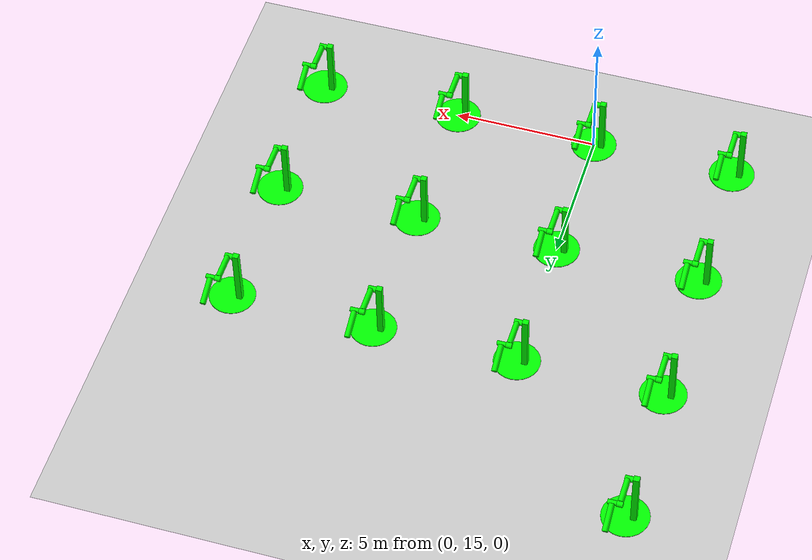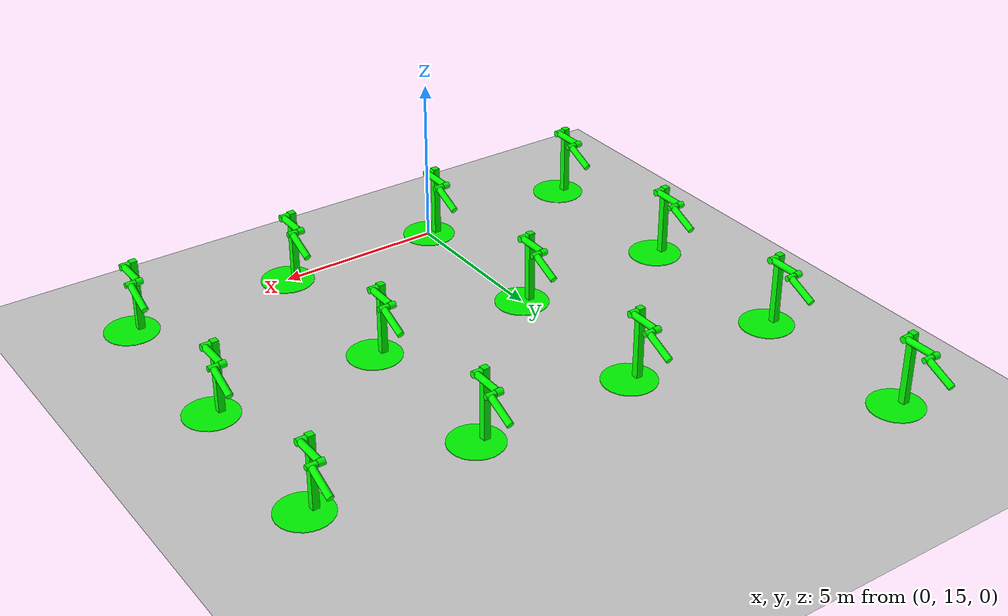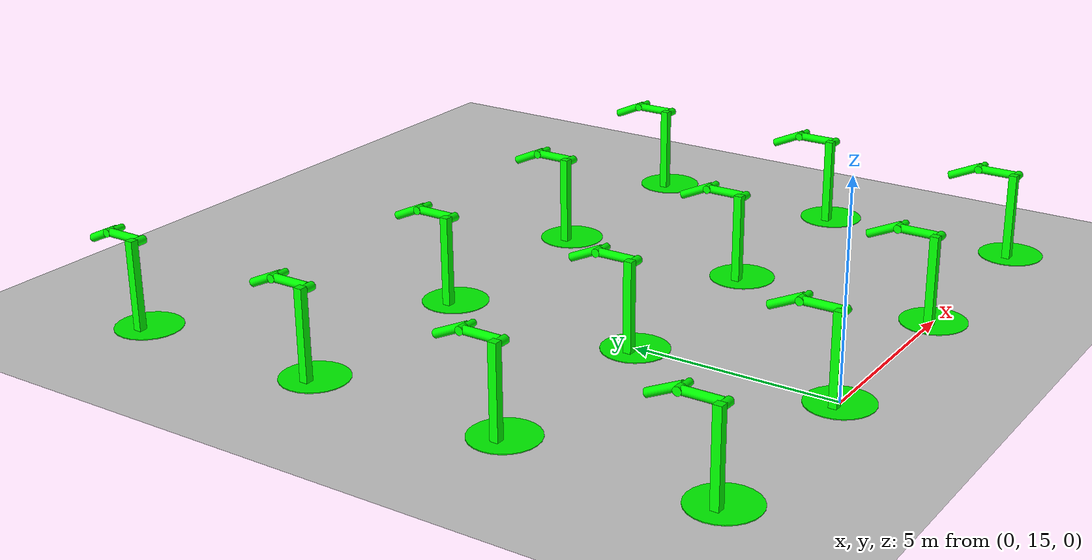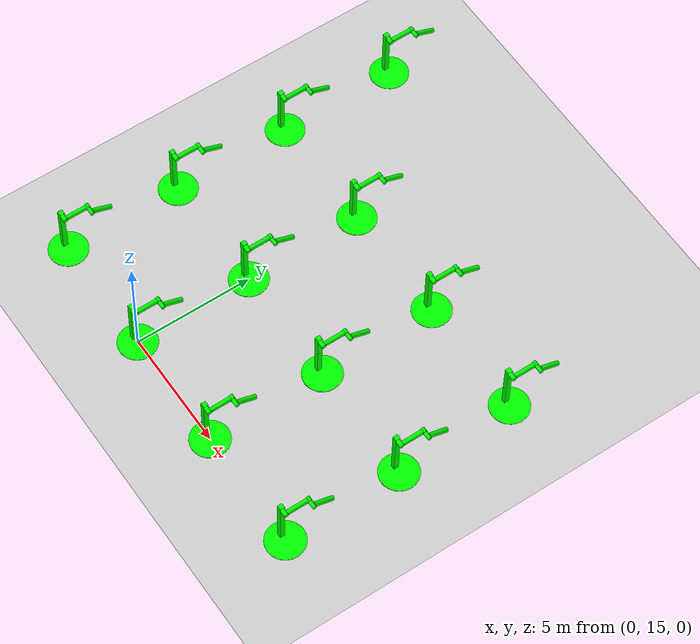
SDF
<sdf version="1.6">
 <world name="double_pendulums">
  <model name="ground_plane">
   <static>true</static>
   <link name="link">
    <collision name="collision">
     <geometry><plane><normal>0 0 1</normal><size>100 100</size></plane></geometry>
    </collision>
    <visual name="visual">
     <geometry><plane><normal>0 0 1</normal><size>100 100</size></plane></geometry>
     <material>
      <ambient>0.8 0.8 0.8 1</ambient>
      <diffuse>0.8 0.8 0.8 1</diffuse>
      <specular>0.8 0.8 0.8 1</specular>
     </material>
    </visual>
   </link>
  </model>
  <model name="dbl_pendulum_84">
   <pose>-5 15 0 0 0 0</pose>
   <link name="base">
    <inertial><mass>100</mass></inertial>
    <visual name="vis_plate_on_ground">
     <pose>0 0 0.01 0 0 0</pose>
     <geometry><cylinder><radius>0.8</radius><length>0.02</length></cylinder></geometry>
     <material><ambient>0 1 0 1</ambient><diffuse>0 1 0 1</diffuse><specular>0 1 0 1</specular></material>
    </visual>
    <visual name="vis_pole">
     <pose>-0.275 0 1.1 0 0 0</pose>
     <geometry><box><size>0.2 0.2 2.2</size></box></geometry>
     <material><ambient>0 1 0 1</ambient><diffuse>0 1 0 1</diffuse><specular>0 1 0 1</specular></material>
    </visual>
    <collision name="col_plate_on_ground">
     <pose>0 0 0.01 0 0 0</pose>
     <geometry><cylinder><radius>0.8</radius><length>0.02</length></cylinder></geometry>
    </collision>
    <collision name="col_pole">
     <pose>-0.275 0 1.1 0 0 0</pose>
     <geometry><box><size>0.2 0.2 2.2</size></box></geometry>
    </collision>
   </link>
   <link name="upper_link">
    <pose>0 0 2.1 -1.5708 0 0</pose>
    <inertial><pose>0 0 0.5 0 0 0</pose></inertial>
    <visual name="vis_upper_joint">
     <pose>-0.05 0 0 0 1.5708 0</pose>
     <geometry><cylinder><radius>0.1</radius><length>0.3</length></cylinder></geometry>
     <material><ambient>0 1 0 1</ambient><diffuse>0 1 0 1</diffuse><specular>0 1 0 1</specular></material>
    </visual>
    <visual name="vis_lower_joint">
     <pose>0 0 1.0 0 1.5708 0</pose>
     <geometry><cylinder><radius>0.1</radius><length>0.2</length></cylinder></geometry>
     <material><ambient>0 1 0 1</ambient><diffuse>0 1 0 1</diffuse><specular>0 1 0 1</specular></material>
    </visual>
    <visual name="vis_cylinder">
     <pose>0 0 0.5 0 0 0</pose>
     <geometry><cylinder><radius>0.1</radius><length>0.9</length></cylinder></geometry>
     <material><ambient>0 1 0 1</ambient><diffuse>0 1 0 1</diffuse><specular>0 1 0 1</specular></material>
    </visual>
    <collision name="col_upper_joint">
     <pose>-0.05 0 0 0 1.5708 0</pose>
     <geometry><cylinder><radius>0.1</radius><length>0.3</length></cylinder></geometry>
    </collision>
    <collision name="col_lower_joint">
     <pose>0 0 1.0 0 1.5708 0</pose>
     <geometry><cylinder><radius>0.1</radius><length>0.2</length></cylinder></geometry>
    </collision>
    <collision name="col_cylinder">
     <pose>0 0 0.5 0 0 0</pose>
     <geometry><cylinder><radius>0.1</radius><length>0.9</length></cylinder></geometry>
    </collision>
   </link>
   <link name="lower_link">
    <pose>0.25 1.0 2.1 -2 0 0</pose>
    <inertial><pose>0 0 0.5 0 0 0</pose></inertial>
    <visual name="vis_lower_joint">
     <pose>0 0 0 0 1.5708 0</pose>
     <geometry><cylinder><radius>0.08</radius><length>0.3</length></cylinder></geometry>
     <material><ambient>0 1 0 1</ambient><diffuse>0 1 0 1</diffuse><specular>0 1 0 1</specular></material>
    </visual>
    <visual name="vis_cylinder">
     <pose>0 0 0.5 0 0 0</pose>
     <geometry><cylinder><radius>0.1</radius><length>0.9</length></cylinder></geometry>
     <material><ambient>0 1 0 1</ambient><diffuse>0 1 0 1</diffuse><specular>0 1 0 1</specular></material>
    </visual>
    <collision name="col_lower_joint">
     <pose>0 0 0 0 1.5708 0</pose>
     <geometry><cylinder><radius>0.08</radius><length>0.3</length></cylinder></geometry>
    </collision>
    <collision name="col_cylinder">
     <pose>0 0 0.5 0 0 0</pose>
     <geometry><cylinder><radius>0.1</radius><length>0.9</length></cylinder></geometry>
    </collision>
   </link>
   <joint name="upper_joint" type="revolute">
    <parent>base</parent>
    <child>upper_link</child>
    <axis><xyz>1.0 0 0</xyz></axis>
   </joint>
   <joint name="lower_joint" type="revolute">
    <parent>upper_link</parent>
    <child>lower_link</child>
    <axis><xyz>1.0 0 0</xyz></axis>
   </joint>
  </model>
  <model name="dbl_pendulum_85">
   <pose>0 15 0 0 0 0</pose>
   <link name="base">
    <inertial><mass>100</mass></inertial>
    <visual name="vis_plate_on_ground">
     <pose>0 0 0.01 0 0 0</pose>
     <geometry><cylinder><radius>0.8</radius><length>0.02</length></cylinder></geometry>
     <material><ambient>0 1 0 1</ambient><diffuse>0 1 0 1</diffuse><specular>0 1 0 1</specular></material>
    </visual>
    <visual name="vis_pole">
     <pose>-0.275 0 1.1 0 0 0</pose>
     <geometry><box><size>0.2 0.2 2.2</size></box></geometry>
     <material><ambient>0 1 0 1</ambient><diffuse>0 1 0 1</diffuse><specular>0 1 0 1</specular></material>
    </visual>
    <collision name="col_plate_on_ground">
     <pose>0 0 0.01 0 0 0</pose>
     <geometry><cylinder><radius>0.8</radius><length>0.02</length></cylinder></geometry>
    </collision>
    <collision name="col_pole">
     <pose>-0.275 0 1.1 0 0 0</pose>
     <geometry><box><size>0.2 0.2 2.2</size></box></geometry>
    </collision>
   </link>
   <link name="upper_link">
    <pose>0 0 2.1 -1.5708 0 0</pose>
    <inertial><pose>0 0 0.5 0 0 0</pose></inertial>
    <visual name="vis_upper_joint">
     <pose>-0.05 0 0 0 1.5708 0</pose>
     <geometry><cylinder><radius>0.1</radius><length>0.3</length></cylinder></geometry>
     <material><ambient>0 1 0 1</ambient><diffuse>0 1 0 1</diffuse><specular>0 1 0 1</specular></material>
    </visual>
    <visual name="vis_lower_joint">
     <pose>0 0 1.0 0 1.5708 0</pose>
     <geometry><cylinder><radius>0.1</radius><length>0.2</length></cylinder></geometry>
     <material><ambient>0 1 0 1</ambient><diffuse>0 1 0 1</diffuse><specular>0 1 0 1</specular></material>
    </visual>
    <visual name="vis_cylinder">
     <pose>0 0 0.5 0 0 0</pose>
     <geometry><cylinder><radius>0.1</radius><length>0.9</length></cylinder></geometry>
     <material><ambient>0 1 0 1</ambient><diffuse>0 1 0 1</diffuse><specular>0 1 0 1</specular></material>
    </visual>
    <collision name="col_upper_joint">
     <pose>-0.05 0 0 0 1.5708 0</pose>
     <geometry><cylinder><radius>0.1</radius><length>0.3</length></cylinder></geometry>
    </collision>
    <collision name="col_lower_joint">
     <pose>0 0 1.0 0 1.5708 0</pose>
     <geometry><cylinder><radius>0.1</radius><length>0.2</length></cylinder></geometry>
    </collision>
    <collision name="col_cylinder">
     <pose>0 0 0.5 0 0 0</pose>
     <geometry><cylinder><radius>0.1</radius><length>0.9</length></cylinder></geometry>
    </collision>
   </link>
   <link name="lower_link">
    <pose>0.25 1.0 2.1 -2 0 0</pose>
    <inertial><pose>0 0 0.5 0 0 0</pose></inertial>
    <visual name="vis_lower_joint">
     <pose>0 0 0 0 1.5708 0</pose>
     <geometry><cylinder><radius>0.08</radius><length>0.3</length></cylinder></geometry>
     <material><ambient>0 1 0 1</ambient><diffuse>0 1 0 1</diffuse><specular>0 1 0 1</specular></material>
    </visual>
    <visual name="vis_cylinder">
     <pose>0 0 0.5 0 0 0</pose>
     <geometry><cylinder><radius>0.1</radius><length>0.9</length></cylinder></geometry>
     <material><ambient>0 1 0 1</ambient><diffuse>0 1 0 1</diffuse><specular>0 1 0 1</specular></material>
    </visual>
    <collision name="col_lower_joint">
     <pose>0 0 0 0 1.5708 0</pose>
     <geometry><cylinder><radius>0.08</radius><length>0.3</length></cylinder></geometry>
    </collision>
    <collision name="col_cylinder">
     <pose>0 0 0.5 0 0 0</pose>
     <geometry><cylinder><radius>0.1</radius><length>0.9</length></cylinder></geometry>
    </collision>
   </link>
   <joint name="upper_joint" type="revolute">
    <parent>base</parent>
    <child>upper_link</child>
    <axis><xyz>1.0 0 0</xyz></axis>
   </joint>
   <joint name="lower_joint" type="revolute">
    <parent>upper_link</parent>
    <child>lower_link</child>
    <axis><xyz>1.0 0 0</xyz></axis>
   </joint>
  </model>
  <model name="dbl_pendulum_86">
   <pose>5 15 0 0 0 0</pose>
   <link name="base">
    <inertial><mass>100</mass></inertial>
    <visual name="vis_plate_on_ground">
     <pose>0 0 0.01 0 0 0</pose>
     <geometry><cylinder><radius>0.8</radius><length>0.02</length></cylinder></geometry>
     <material><ambient>0 1 0 1</ambient><diffuse>0 1 0 1</diffuse><specular>0 1 0 1</specular></material>
    </visual>
    <visual name="vis_pole">
     <pose>-0.275 0 1.1 0 0 0</pose>
     <geometry><box><size>0.2 0.2 2.2</size></box></geometry>
     <material><ambient>0 1 0 1</ambient><diffuse>0 1 0 1</diffuse><specular>0 1 0 1</specular></material>
    </visual>
    <collision name="col_plate_on_ground">
     <pose>0 0 0.01 0 0 0</pose>
     <geometry><cylinder><radius>0.8</radius><length>0.02</length></cylinder></geometry>
    </collision>
    <collision name="col_pole">
     <pose>-0.275 0 1.1 0 0 0</pose>
     <geometry><box><size>0.2 0.2 2.2</size></box></geometry>
    </collision>
   </link>
   <link name="upper_link">
    <pose>0 0 2.1 -1.5708 0 0</pose>
    <inertial><pose>0 0 0.5 0 0 0</pose></inertial>
    <visual name="vis_upper_joint">
     <pose>-0.05 0 0 0 1.5708 0</pose>
     <geometry><cylinder><radius>0.1</radius><length>0.3</length></cylinder></geometry>
     <material><ambient>0 1 0 1</ambient><diffuse>0 1 0 1</diffuse><specular>0 1 0 1</specular></material>
    </visual>
    <visual name="vis_lower_joint">
     <pose>0 0 1.0 0 1.5708 0</pose>
     <geometry><cylinder><radius>0.1</radius><length>0.2</length></cylinder></geometry>
     <material><ambient>0 1 0 1</ambient><diffuse>0 1 0 1</diffuse><specular>0 1 0 1</specular></material>
    </visual>
    <visual name="vis_cylinder">
     <pose>0 0 0.5 0 0 0</pose>
     <geometry><cylinder><radius>0.1</radius><length>0.9</length></cylinder></geometry>
     <material><ambient>0 1 0 1</ambient><diffuse>0 1 0 1</diffuse><specular>0 1 0 1</specular></material>
    </visual>
    <collision name="col_upper_joint">
     <pose>-0.05 0 0 0 1.5708 0</pose>
     <geometry><cylinder><radius>0.1</radius><length>0.3</length></cylinder></geometry>
    </collision>
    <collision name="col_lower_joint">
     <pose>0 0 1.0 0 1.5708 0</pose>
     <geometry><cylinder><radius>0.1</radius><length>0.2</length></cylinder></geometry>
    </collision>
    <collision name="col_cylinder">
     <pose>0 0 0.5 0 0 0</pose>
     <geometry><cylinder><radius>0.1</radius><length>0.9</length></cylinder></geometry>
    </collision>
   </link>
   <link name="lower_link">
    <pose>0.25 1.0 2.1 -2 0 0</pose>
    <inertial><pose>0 0 0.5 0 0 0</pose></inertial>
    <visual name="vis_lower_joint">
     <pose>0 0 0 0 1.5708 0</pose>
     <geometry><cylinder><radius>0.08</radius><length>0.3</length></cylinder></geometry>
     <material><ambient>0 1 0 1</ambient><diffuse>0 1 0 1</diffuse><specular>0 1 0 1</specular></material>
    </visual>
    <visual name="vis_cylinder">
     <pose>0 0 0.5 0 0 0</pose>
     <geometry><cylinder><radius>0.1</radius><length>0.9</length></cylinder></geometry>
     <material><ambient>0 1 0 1</ambient><diffuse>0 1 0 1</diffuse><specular>0 1 0 1</specular></material>
    </visual>
    <collision name="col_lower_joint">
     <pose>0 0 0 0 1.5708 0</pose>
     <geometry><cylinder><radius>0.08</radius><length>0.3</length></cylinder></geometry>
    </collision>
    <collision name="col_cylinder">
     <pose>0 0 0.5 0 0 0</pose>
     <geometry><cylinder><radius>0.1</radius><length>0.9</length></cylinder></geometry>
    </collision>
   </link>
   <joint name="upper_joint" type="revolute">
    <parent>base</parent>
    <child>upper_link</child>
    <axis><xyz>1.0 0 0</xyz></axis>
   </joint>
   <joint name="lower_joint" type="revolute">
    <parent>upper_link</parent>
    <child>lower_link</child>
    <axis><xyz>1.0 0 0</xyz></axis>
   </joint>
  </model>
  <model name="dbl_pendulum_87">
   <pose>10 15 0 0 0 0</pose>
   <link name="base">
    <inertial><mass>100</mass></inertial>
    <visual name="vis_plate_on_ground">
     <pose>0 0 0.01 0 0 0</pose>
     <geometry><cylinder><radius>0.8</radius><length>0.02</length></cylinder></geometry>
     <material><ambient>0 1 0 1</ambient><diffuse>0 1 0 1</diffuse><specular>0 1 0 1</specular></material>
    </visual>
    <visual name="vis_pole">
     <pose>-0.275 0 1.1 0 0 0</pose>
     <geometry><box><size>0.2 0.2 2.2</size></box></geometry>
     <material><ambient>0 1 0 1</ambient><diffuse>0 1 0 1</diffuse><specular>0 1 0 1</specular></material>
    </visual>
    <collision name="col_plate_on_ground">
     <pose>0 0 0.01 0 0 0</pose>
     <geometry><cylinder><radius>0.8</radius><length>0.02</length></cylinder></geometry>
    </collision>
    <collision name="col_pole">
     <pose>-0.275 0 1.1 0 0 0</pose>
     <geometry><box><size>0.2 0.2 2.2</size></box></geometry>
    </collision>
   </link>
   <link name="upper_link">
    <pose>0 0 2.1 -1.5708 0 0</pose>
    <inertial><pose>0 0 0.5 0 0 0</pose></inertial>
    <visual name="vis_upper_joint">
     <pose>-0.05 0 0 0 1.5708 0</pose>
     <geometry><cylinder><radius>0.1</radius><length>0.3</length></cylinder></geometry>
     <material><ambient>0 1 0 1</ambient><diffuse>0 1 0 1</diffuse><specular>0 1 0 1</specular></material>
    </visual>
    <visual name="vis_lower_joint">
     <pose>0 0 1.0 0 1.5708 0</pose>
     <geometry><cylinder><radius>0.1</radius><length>0.2</length></cylinder></geometry>
     <material><ambient>0 1 0 1</ambient><diffuse>0 1 0 1</diffuse><specular>0 1 0 1</specular></material>
    </visual>
    <visual name="vis_cylinder">
     <pose>0 0 0.5 0 0 0</pose>
     <geometry><cylinder><radius>0.1</radius><length>0.9</length></cylinder></geometry>
     <material><ambient>0 1 0 1</ambient><diffuse>0 1 0 1</diffuse><specular>0 1 0 1</specular></material>
    </visual>
    <collision name="col_upper_joint">
     <pose>-0.05 0 0 0 1.5708 0</pose>
     <geometry><cylinder><radius>0.1</radius><length>0.3</length></cylinder></geometry>
    </collision>
    <collision name="col_lower_joint">
     <pose>0 0 1.0 0 1.5708 0</pose>
     <geometry><cylinder><radius>0.1</radius><length>0.2</length></cylinder></geometry>
    </collision>
    <collision name="col_cylinder">
     <pose>0 0 0.5 0 0 0</pose>
     <geometry><cylinder><radius>0.1</radius><length>0.9</length></cylinder></geometry>
    </collision>
   </link>
   <link name="lower_link">
    <pose>0.25 1.0 2.1 -2 0 0</pose>
    <inertial><pose>0 0 0.5 0 0 0</pose></inertial>
    <visual name="vis_lower_joint">
     <pose>0 0 0 0 1.5708 0</pose>
     <geometry><cylinder><radius>0.08</radius><length>0.3</length></cylinder></geometry>
     <material><ambient>0 1 0 1</ambient><diffuse>0 1 0 1</diffuse><specular>0 1 0 1</specular></material>
    </visual>
    <visual name="vis_cylinder">
     <pose>0 0 0.5 0 0 0</pose>
     <geometry><cylinder><radius>0.1</radius><length>0.9</length></cylinder></geometry>
     <material><ambient>0 1 0 1</ambient><diffuse>0 1 0 1</diffuse><specular>0 1 0 1</specular></material>
    </visual>
    <collision name="col_lower_joint">
     <pose>0 0 0 0 1.5708 0</pose>
     <geometry><cylinder><radius>0.08</radius><length>0.3</length></cylinder></geometry>
    </collision>
    <collision name="col_cylinder">
     <pose>0 0 0.5 0 0 0</pose>
     <geometry><cylinder><radius>0.1</radius><length>0.9</length></cylinder></geometry>
    </collision>
   </link>
   <joint name="upper_joint" type="revolute">
    <parent>base</parent>
    <child>upper_link</child>
    <axis><xyz>1.0 0 0</xyz></axis>
   </joint>
   <joint name="lower_joint" type="revolute">
    <parent>upper_link</parent>
    <child>lower_link</child>
    <axis><xyz>1.0 0 0</xyz></axis>
   </joint>
  </model>
  <model name="dbl_pendulum_109">
   <pose>-5 20 0 0 0 0</pose>
   <link name="base">
    <inertial><mass>100</mass></inertial>
    <visual name="vis_plate_on_ground">
     <pose>0 0 0.01 0 0 0</pose>
     <geometry><cylinder><radius>0.8</radius><length>0.02</length></cylinder></geometry>
     <material><ambient>0 1 0 1</ambient><diffuse>0 1 0 1</diffuse><specular>0 1 0 1</specular></material>
    </visual>
    <visual name="vis_pole">
     <pose>-0.275 0 1.1 0 0 0</pose>
     <geometry><box><size>0.2 0.2 2.2</size></box></geometry>
     <material><ambient>0 1 0 1</ambient><diffuse>0 1 0 1</diffuse><specular>0 1 0 1</specular></material>
    </visual>
    <collision name="col_plate_on_ground">
     <pose>0 0 0.01 0 0 0</pose>
     <geometry><cylinder><radius>0.8</radius><length>0.02</length></cylinder></geometry>
    </collision>
    <collision name="col_pole">
     <pose>-0.275 0 1.1 0 0 0</pose>
     <geometry><box><size>0.2 0.2 2.2</size></box></geometry>
    </collision>
   </link>
   <link name="upper_link">
    <pose>0 0 2.1 -1.5708 0 0</pose>
    <inertial><pose>0 0 0.5 0 0 0</pose></inertial>
    <visual name="vis_upper_joint">
     <pose>-0.05 0 0 0 1.5708 0</pose>
     <geometry><cylinder><radius>0.1</radius><length>0.3</length></cylinder></geometry>
     <material><ambient>0 1 0 1</ambient><diffuse>0 1 0 1</diffuse><specular>0 1 0 1</specular></material>
    </visual>
    <visual name="vis_lower_joint">
     <pose>0 0 1.0 0 1.5708 0</pose>
     <geometry><cylinder><radius>0.1</radius><length>0.2</length></cylinder></geometry>
     <material><ambient>0 1 0 1</ambient><diffuse>0 1 0 1</diffuse><specular>0 1 0 1</specular></material>
    </visual>
    <visual name="vis_cylinder">
     <pose>0 0 0.5 0 0 0</pose>
     <geometry><cylinder><radius>0.1</radius><length>0.9</length></cylinder></geometry>
     <material><ambient>0 1 0 1</ambient><diffuse>0 1 0 1</diffuse><specular>0 1 0 1</specular></material>
    </visual>
    <collision name="col_upper_joint">
     <pose>-0.05 0 0 0 1.5708 0</pose>
     <geometry><cylinder><radius>0.1</radius><length>0.3</length></cylinder></geometry>
    </collision>
    <collision name="col_lower_joint">
     <pose>0 0 1.0 0 1.5708 0</pose>
     <geometry><cylinder><radius>0.1</radius><length>0.2</length></cylinder></geometry>
    </collision>
    <collision name="col_cylinder">
     <pose>0 0 0.5 0 0 0</pose>
     <geometry><cylinder><radius>0.1</radius><length>0.9</length></cylinder></geometry>
    </collision>
   </link>
   <link name="lower_link">
    <pose>0.25 1.0 2.1 -2 0 0</pose>
    <inertial><pose>0 0 0.5 0 0 0</pose></inertial>
    <visual name="vis_lower_joint">
     <pose>0 0 0 0 1.5708 0</pose>
     <geometry><cylinder><radius>0.08</radius><length>0.3</length></cylinder></geometry>
     <material><ambient>0 1 0 1</ambient><diffuse>0 1 0 1</diffuse><specular>0 1 0 1</specular></material>
    </visual>
    <visual name="vis_cylinder">
     <pose>0 0 0.5 0 0 0</pose>
     <geometry><cylinder><radius>0.1</radius><length>0.9</length></cylinder></geometry>
     <material><ambient>0 1 0 1</ambient><diffuse>0 1 0 1</diffuse><specular>0 1 0 1</specular></material>
    </visual>
    <collision name="col_lower_joint">
     <pose>0 0 0 0 1.5708 0</pose>
     <geometry><cylinder><radius>0.08</radius><length>0.3</length></cylinder></geometry>
    </collision>
    <collision name="col_cylinder">
     <pose>0 0 0.5 0 0 0</pose>
     <geometry><cylinder><radius>0.1</radius><length>0.9</length></cylinder></geometry>
    </collision>
   </link>
   <joint name="upper_joint" type="revolute">
    <parent>base</parent>
    <child>upper_link</child>
    <axis><xyz>1.0 0 0</xyz></axis>
   </joint>
   <joint name="lower_joint" type="revolute">
    <parent>upper_link</parent>
    <child>lower_link</child>
    <axis><xyz>1.0 0 0</xyz></axis>
   </joint>
  </model>
  <model name="dbl_pendulum_110">
   <pose>0 20 0 0 0 0</pose>
   <link name="base">
    <inertial><mass>100</mass></inertial>
    <visual name="vis_plate_on_ground">
     <pose>0 0 0.01 0 0 0</pose>
     <geometry><cylinder><radius>0.8</radius><length>0.02</length></cylinder></geometry>
     <material><ambient>0 1 0 1</ambient><diffuse>0 1 0 1</diffuse><specular>0 1 0 1</specular></material>
    </visual>
    <visual name="vis_pole">
     <pose>-0.275 0 1.1 0 0 0</pose>
     <geometry><box><size>0.2 0.2 2.2</size></box></geometry>
     <material><ambient>0 1 0 1</ambient><diffuse>0 1 0 1</diffuse><specular>0 1 0 1</specular></material>
    </visual>
    <collision name="col_plate_on_ground">
     <pose>0 0 0.01 0 0 0</pose>
     <geometry><cylinder><radius>0.8</radius><length>0.02</length></cylinder></geometry>
    </collision>
    <collision name="col_pole">
     <pose>-0.275 0 1.1 0 0 0</pose>
     <geometry><box><size>0.2 0.2 2.2</size></box></geometry>
    </collision>
   </link>
   <link name="upper_link">
    <pose>0 0 2.1 -1.5708 0 0</pose>
    <inertial><pose>0 0 0.5 0 0 0</pose></inertial>
    <visual name="vis_upper_joint">
     <pose>-0.05 0 0 0 1.5708 0</pose>
     <geometry><cylinder><radius>0.1</radius><length>0.3</length></cylinder></geometry>
     <material><ambient>0 1 0 1</ambient><diffuse>0 1 0 1</diffuse><specular>0 1 0 1</specular></material>
    </visual>
    <visual name="vis_lower_joint">
     <pose>0 0 1.0 0 1.5708 0</pose>
     <geometry><cylinder><radius>0.1</radius><length>0.2</length></cylinder></geometry>
     <material><ambient>0 1 0 1</ambient><diffuse>0 1 0 1</diffuse><specular>0 1 0 1</specular></material>
    </visual>
    <visual name="vis_cylinder">
     <pose>0 0 0.5 0 0 0</pose>
     <geometry><cylinder><radius>0.1</radius><length>0.9</length></cylinder></geometry>
     <material><ambient>0 1 0 1</ambient><diffuse>0 1 0 1</diffuse><specular>0 1 0 1</specular></material>
    </visual>
    <collision name="col_upper_joint">
     <pose>-0.05 0 0 0 1.5708 0</pose>
     <geometry><cylinder><radius>0.1</radius><length>0.3</length></cylinder></geometry>
    </collision>
    <collision name="col_lower_joint">
     <pose>0 0 1.0 0 1.5708 0</pose>
     <geometry><cylinder><radius>0.1</radius><length>0.2</length></cylinder></geometry>
    </collision>
    <collision name="col_cylinder">
     <pose>0 0 0.5 0 0 0</pose>
     <geometry><cylinder><radius>0.1</radius><length>0.9</length></cylinder></geometry>
    </collision>
   </link>
   <link name="lower_link">
    <pose>0.25 1.0 2.1 -2 0 0</pose>
    <inertial><pose>0 0 0.5 0 0 0</pose></inertial>
    <visual name="vis_lower_joint">
     <pose>0 0 0 0 1.5708 0</pose>
     <geometry><cylinder><radius>0.08</radius><length>0.3</length></cylinder></geometry>
     <material><ambient>0 1 0 1</ambient><diffuse>0 1 0 1</diffuse><specular>0 1 0 1</specular></material>
    </visual>
    <visual name="vis_cylinder">
     <pose>0 0 0.5 0 0 0</pose>
     <geometry><cylinder><radius>0.1</radius><length>0.9</length></cylinder></geometry>
     <material><ambient>0 1 0 1</ambient><diffuse>0 1 0 1</diffuse><specular>0 1 0 1</specular></material>
    </visual>
    <collision name="col_lower_joint">
     <pose>0 0 0 0 1.5708 0</pose>
     <geometry><cylinder><radius>0.08</radius><length>0.3</length></cylinder></geometry>
    </collision>
    <collision name="col_cylinder">
     <pose>0 0 0.5 0 0 0</pose>
     <geometry><cylinder><radius>0.1</radius><length>0.9</length></cylinder></geometry>
    </collision>
   </link>
   <joint name="upper_joint" type="revolute">
    <parent>base</parent>
    <child>upper_link</child>
    <axis><xyz>1.0 0 0</xyz></axis>
   </joint>
   <joint name="lower_joint" type="revolute">
    <parent>upper_link</parent>
    <child>lower_link</child>
    <axis><xyz>1.0 0 0</xyz></axis>
   </joint>
  </model>
  <model name="dbl_pendulum_111">
   <pose>5 20 0 0 0 0</pose>
   <link name="base">
    <inertial><mass>100</mass></inertial>
    <visual name="vis_plate_on_ground">
     <pose>0 0 0.01 0 0 0</pose>
     <geometry><cylinder><radius>0.8</radius><length>0.02</length></cylinder></geometry>
     <material><ambient>0 1 0 1</ambient><diffuse>0 1 0 1</diffuse><specular>0 1 0 1</specular></material>
    </visual>
    <visual name="vis_pole">
     <pose>-0.275 0 1.1 0 0 0</pose>
     <geometry><box><size>0.2 0.2 2.2</size></box></geometry>
     <material><ambient>0 1 0 1</ambient><diffuse>0 1 0 1</diffuse><specular>0 1 0 1</specular></material>
    </visual>
    <collision name="col_plate_on_ground">
     <pose>0 0 0.01 0 0 0</pose>
     <geometry><cylinder><radius>0.8</radius><length>0.02</length></cylinder></geometry>
    </collision>
    <collision name="col_pole">
     <pose>-0.275 0 1.1 0 0 0</pose>
     <geometry><box><size>0.2 0.2 2.2</size></box></geometry>
    </collision>
   </link>
   <link name="upper_link">
    <pose>0 0 2.1 -1.5708 0 0</pose>
    <inertial><pose>0 0 0.5 0 0 0</pose></inertial>
    <visual name="vis_upper_joint">
     <pose>-0.05 0 0 0 1.5708 0</pose>
     <geometry><cylinder><radius>0.1</radius><length>0.3</length></cylinder></geometry>
     <material><ambient>0 1 0 1</ambient><diffuse>0 1 0 1</diffuse><specular>0 1 0 1</specular></material>
    </visual>
    <visual name="vis_lower_joint">
     <pose>0 0 1.0 0 1.5708 0</pose>
     <geometry><cylinder><radius>0.1</radius><length>0.2</length></cylinder></geometry>
     <material><ambient>0 1 0 1</ambient><diffuse>0 1 0 1</diffuse><specular>0 1 0 1</specular></material>
    </visual>
    <visual name="vis_cylinder">
     <pose>0 0 0.5 0 0 0</pose>
     <geometry><cylinder><radius>0.1</radius><length>0.9</length></cylinder></geometry>
     <material><ambient>0 1 0 1</ambient><diffuse>0 1 0 1</diffuse><specular>0 1 0 1</specular></material>
    </visual>
    <collision name="col_upper_joint">
     <pose>-0.05 0 0 0 1.5708 0</pose>
     <geometry><cylinder><radius>0.1</radius><length>0.3</length></cylinder></geometry>
    </collision>
    <collision name="col_lower_joint">
     <pose>0 0 1.0 0 1.5708 0</pose>
     <geometry><cylinder><radius>0.1</radius><length>0.2</length></cylinder></geometry>
    </collision>
    <collision name="col_cylinder">
     <pose>0 0 0.5 0 0 0</pose>
     <geometry><cylinder><radius>0.1</radius><length>0.9</length></cylinder></geometry>
    </collision>
   </link>
   <link name="lower_link">
    <pose>0.25 1.0 2.1 -2 0 0</pose>
    <inertial><pose>0 0 0.5 0 0 0</pose></inertial>
    <visual name="vis_lower_joint">
     <pose>0 0 0 0 1.5708 0</pose>
     <geometry><cylinder><radius>0.08</radius><length>0.3</length></cylinder></geometry>
     <material><ambient>0 1 0 1</ambient><diffuse>0 1 0 1</diffuse><specular>0 1 0 1</specular></material>
    </visual>
    <visual name="vis_cylinder">
     <pose>0 0 0.5 0 0 0</pose>
     <geometry><cylinder><radius>0.1</radius><length>0.9</length></cylinder></geometry>
     <material><ambient>0 1 0 1</ambient><diffuse>0 1 0 1</diffuse><specular>0 1 0 1</specular></material>
    </visual>
    <collision name="col_lower_joint">
     <pose>0 0 0 0 1.5708 0</pose>
     <geometry><cylinder><radius>0.08</radius><length>0.3</length></cylinder></geometry>
    </collision>
    <collision name="col_cylinder">
     <pose>0 0 0.5 0 0 0</pose>
     <geometry><cylinder><radius>0.1</radius><length>0.9</length></cylinder></geometry>
    </collision>
   </link>
   <joint name="upper_joint" type="revolute">
    <parent>base</parent>
    <child>upper_link</child>
    <axis><xyz>1.0 0 0</xyz></axis>
   </joint>
   <joint name="lower_joint" type="revolute">
    <parent>upper_link</parent>
    <child>lower_link</child>
    <axis><xyz>1.0 0 0</xyz></axis>
   </joint>
  </model>
  <model name="dbl_pendulum_112">
   <pose>10 20 0 0 0 0</pose>
   <link name="base">
    <inertial><mass>100</mass></inertial>
    <visual name="vis_plate_on_ground">
     <pose>0 0 0.01 0 0 0</pose>
     <geometry><cylinder><radius>0.8</radius><length>0.02</length></cylinder></geometry>
     <material><ambient>0 1 0 1</ambient><diffuse>0 1 0 1</diffuse><specular>0 1 0 1</specular></material>
    </visual>
    <visual name="vis_pole">
     <pose>-0.275 0 1.1 0 0 0</pose>
     <geometry><box><size>0.2 0.2 2.2</size></box></geometry>
     <material><ambient>0 1 0 1</ambient><diffuse>0 1 0 1</diffuse><specular>0 1 0 1</specular></material>
    </visual>
    <collision name="col_plate_on_ground">
     <pose>0 0 0.01 0 0 0</pose>
     <geometry><cylinder><radius>0.8</radius><length>0.02</length></cylinder></geometry>
    </collision>
    <collision name="col_pole">
     <pose>-0.275 0 1.1 0 0 0</pose>
     <geometry><box><size>0.2 0.2 2.2</size></box></geometry>
    </collision>
   </link>
   <link name="upper_link">
    <pose>0 0 2.1 -1.5708 0 0</pose>
    <inertial><pose>0 0 0.5 0 0 0</pose></inertial>
    <visual name="vis_upper_joint">
     <pose>-0.05 0 0 0 1.5708 0</pose>
     <geometry><cylinder><radius>0.1</radius><length>0.3</length></cylinder></geometry>
     <material><ambient>0 1 0 1</ambient><diffuse>0 1 0 1</diffuse><specular>0 1 0 1</specular></material>
    </visual>
    <visual name="vis_lower_joint">
     <pose>0 0 1.0 0 1.5708 0</pose>
     <geometry><cylinder><radius>0.1</radius><length>0.2</length></cylinder></geometry>
     <material><ambient>0 1 0 1</ambient><diffuse>0 1 0 1</diffuse><specular>0 1 0 1</specular></material>
    </visual>
    <visual name="vis_cylinder">
     <pose>0 0 0.5 0 0 0</pose>
     <geometry><cylinder><radius>0.1</radius><length>0.9</length></cylinder></geometry>
     <material><ambient>0 1 0 1</ambient><diffuse>0 1 0 1</diffuse><specular>0 1 0 1</specular></material>
    </visual>
    <collision name="col_upper_joint">
     <pose>-0.05 0 0 0 1.5708 0</pose>
     <geometry><cylinder><radius>0.1</radius><length>0.3</length></cylinder></geometry>
    </collision>
    <collision name="col_lower_joint">
     <pose>0 0 1.0 0 1.5708 0</pose>
     <geometry><cylinder><radius>0.1</radius><length>0.2</length></cylinder></geometry>
    </collision>
    <collision name="col_cylinder">
     <pose>0 0 0.5 0 0 0</pose>
     <geometry><cylinder><radius>0.1</radius><length>0.9</length></cylinder></geometry>
    </collision>
   </link>
   <link name="lower_link">
    <pose>0.25 1.0 2.1 -2 0 0</pose>
    <inertial><pose>0 0 0.5 0 0 0</pose></inertial>
    <visual name="vis_lower_joint">
     <pose>0 0 0 0 1.5708 0</pose>
     <geometry><cylinder><radius>0.08</radius><length>0.3</length></cylinder></geometry>
     <material><ambient>0 1 0 1</ambient><diffuse>0 1 0 1</diffuse><specular>0 1 0 1</specular></material>
    </visual>
    <visual name="vis_cylinder">
     <pose>0 0 0.5 0 0 0</pose>
     <geometry><cylinder><radius>0.1</radius><length>0.9</length></cylinder></geometry>
     <material><ambient>0 1 0 1</ambient><diffuse>0 1 0 1</diffuse><specular>0 1 0 1</specular></material>
    </visual>
    <collision name="col_lower_joint">
     <pose>0 0 0 0 1.5708 0</pose>
     <geometry><cylinder><radius>0.08</radius><length>0.3</length></cylinder></geometry>
    </collision>
    <collision name="col_cylinder">
     <pose>0 0 0.5 0 0 0</pose>
     <geometry><cylinder><radius>0.1</radius><length>0.9</length></cylinder></geometry>
    </collision>
   </link>
   <joint name="upper_joint" type="revolute">
    <parent>base</parent>
    <child>upper_link</child>
    <axis><xyz>1.0 0 0</xyz></axis>
   </joint>
   <joint name="lower_joint" type="revolute">
    <parent>upper_link</parent>
    <child>lower_link</child>
    <axis><xyz>1.0 0 0</xyz></axis>
   </joint>
  </model>
  <model name="dbl_pendulum_134">
   <pose>-5 25 0 0 0 0</pose>
   <link name="base">
    <inertial><mass>100</mass></inertial>
    <visual name="vis_plate_on_ground">
     <pose>0 0 0.01 0 0 0</pose>
     <geometry><cylinder><radius>0.8</radius><length>0.02</length></cylinder></geometry>
     <material><ambient>0 1 0 1</ambient><diffuse>0 1 0 1</diffuse><specular>0 1 0 1</specular></material>
    </visual>
    <visual name="vis_pole">
     <pose>-0.275 0 1.1 0 0 0</pose>
     <geometry><box><size>0.2 0.2 2.2</size></box></geometry>
     <material><ambient>0 1 0 1</ambient><diffuse>0 1 0 1</diffuse><specular>0 1 0 1</specular></material>
    </visual>
    <collision name="col_plate_on_ground">
     <pose>0 0 0.01 0 0 0</pose>
     <geometry><cylinder><radius>0.8</radius><length>0.02</length></cylinder></geometry>
    </collision>
    <collision name="col_pole">
     <pose>-0.275 0 1.1 0 0 0</pose>
     <geometry><box><size>0.2 0.2 2.2</size></box></geometry>
    </collision>
   </link>
   <link name="upper_link">
    <pose>0 0 2.1 -1.5708 0 0</pose>
    <inertial><pose>0 0 0.5 0 0 0</pose></inertial>
    <visual name="vis_upper_joint">
     <pose>-0.05 0 0 0 1.5708 0</pose>
     <geometry><cylinder><radius>0.1</radius><length>0.3</length></cylinder></geometry>
     <material><ambient>0 1 0 1</ambient><diffuse>0 1 0 1</diffuse><specular>0 1 0 1</specular></material>
    </visual>
    <visual name="vis_lower_joint">
     <pose>0 0 1.0 0 1.5708 0</pose>
     <geometry><cylinder><radius>0.1</radius><length>0.2</length></cylinder></geometry>
     <material><ambient>0 1 0 1</ambient><diffuse>0 1 0 1</diffuse><specular>0 1 0 1</specular></material>
    </visual>
    <visual name="vis_cylinder">
     <pose>0 0 0.5 0 0 0</pose>
     <geometry><cylinder><radius>0.1</radius><length>0.9</length></cylinder></geometry>
     <material><ambient>0 1 0 1</ambient><diffuse>0 1 0 1</diffuse><specular>0 1 0 1</specular></material>
    </visual>
    <collision name="col_upper_joint">
     <pose>-0.05 0 0 0 1.5708 0</pose>
     <geometry><cylinder><radius>0.1</radius><length>0.3</length></cylinder></geometry>
    </collision>
    <collision name="col_lower_joint">
     <pose>0 0 1.0 0 1.5708 0</pose>
     <geometry><cylinder><radius>0.1</radius><length>0.2</length></cylinder></geometry>
    </collision>
    <collision name="col_cylinder">
     <pose>0 0 0.5 0 0 0</pose>
     <geometry><cylinder><radius>0.1</radius><length>0.9</length></cylinder></geometry>
    </collision>
   </link>
   <link name="lower_link">
    <pose>0.25 1.0 2.1 -2 0 0</pose>
    <inertial><pose>0 0 0.5 0 0 0</pose></inertial>
    <visual name="vis_lower_joint">
     <pose>0 0 0 0 1.5708 0</pose>
     <geometry><cylinder><radius>0.08</radius><length>0.3</length></cylinder></geometry>
     <material><ambient>0 1 0 1</ambient><diffuse>0 1 0 1</diffuse><specular>0 1 0 1</specular></material>
    </visual>
    <visual name="vis_cylinder">
     <pose>0 0 0.5 0 0 0</pose>
     <geometry><cylinder><radius>0.1</radius><length>0.9</length></cylinder></geometry>
     <material><ambient>0 1 0 1</ambient><diffuse>0 1 0 1</diffuse><specular>0 1 0 1</specular></material>
    </visual>
    <collision name="col_lower_joint">
     <pose>0 0 0 0 1.5708 0</pose>
     <geometry><cylinder><radius>0.08</radius><length>0.3</length></cylinder></geometry>
    </collision>
    <collision name="col_cylinder">
     <pose>0 0 0.5 0 0 0</pose>
     <geometry><cylinder><radius>0.1</radius><length>0.9</length></cylinder></geometry>
    </collision>
   </link>
   <joint name="upper_joint" type="revolute">
    <parent>base</parent>
    <child>upper_link</child>
    <axis><xyz>1.0 0 0</xyz></axis>
   </joint>
   <joint name="lower_joint" type="revolute">
    <parent>upper_link</parent>
    <child>lower_link</child>
    <axis><xyz>1.0 0 0</xyz></axis>
   </joint>
  </model>
  <model name="dbl_pendulum_135">
   <pose>0 25 0 0 0 0</pose>
   <link name="base">
    <inertial><mass>100</mass></inertial>
    <visual name="vis_plate_on_ground">
     <pose>0 0 0.01 0 0 0</pose>
     <geometry><cylinder><radius>0.8</radius><length>0.02</length></cylinder></geometry>
     <material><ambient>0 1 0 1</ambient><diffuse>0 1 0 1</diffuse><specular>0 1 0 1</specular></material>
    </visual>
    <visual name="vis_pole">
     <pose>-0.275 0 1.1 0 0 0</pose>
     <geometry><box><size>0.2 0.2 2.2</size></box></geometry>
     <material><ambient>0 1 0 1</ambient><diffuse>0 1 0 1</diffuse><specular>0 1 0 1</specular></material>
    </visual>
    <collision name="col_plate_on_ground">
     <pose>0 0 0.01 0 0 0</pose>
     <geometry><cylinder><radius>0.8</radius><length>0.02</length></cylinder></geometry>
    </collision>
    <collision name="col_pole">
     <pose>-0.275 0 1.1 0 0 0</pose>
     <geometry><box><size>0.2 0.2 2.2</size></box></geometry>
    </collision>
   </link>
   <link name="upper_link">
    <pose>0 0 2.1 -1.5708 0 0</pose>
    <inertial><pose>0 0 0.5 0 0 0</pose></inertial>
    <visual name="vis_upper_joint">
     <pose>-0.05 0 0 0 1.5708 0</pose>
     <geometry><cylinder><radius>0.1</radius><length>0.3</length></cylinder></geometry>
     <material><ambient>0 1 0 1</ambient><diffuse>0 1 0 1</diffuse><specular>0 1 0 1</specular></material>
    </visual>
    <visual name="vis_lower_joint">
     <pose>0 0 1.0 0 1.5708 0</pose>
     <geometry><cylinder><radius>0.1</radius><length>0.2</length></cylinder></geometry>
     <material><ambient>0 1 0 1</ambient><diffuse>0 1 0 1</diffuse><specular>0 1 0 1</specular></material>
    </visual>
    <visual name="vis_cylinder">
     <pose>0 0 0.5 0 0 0</pose>
     <geometry><cylinder><radius>0.1</radius><length>0.9</length></cylinder></geometry>
     <material><ambient>0 1 0 1</ambient><diffuse>0 1 0 1</diffuse><specular>0 1 0 1</specular></material>
    </visual>
    <collision name="col_upper_joint">
     <pose>-0.05 0 0 0 1.5708 0</pose>
     <geometry><cylinder><radius>0.1</radius><length>0.3</length></cylinder></geometry>
    </collision>
    <collision name="col_lower_joint">
     <pose>0 0 1.0 0 1.5708 0</pose>
     <geometry><cylinder><radius>0.1</radius><length>0.2</length></cylinder></geometry>
    </collision>
    <collision name="col_cylinder">
     <pose>0 0 0.5 0 0 0</pose>
     <geometry><cylinder><radius>0.1</radius><length>0.9</length></cylinder></geometry>
    </collision>
   </link>
   <link name="lower_link">
    <pose>0.25 1.0 2.1 -2 0 0</pose>
    <inertial><pose>0 0 0.5 0 0 0</pose></inertial>
    <visual name="vis_lower_joint">
     <pose>0 0 0 0 1.5708 0</pose>
     <geometry><cylinder><radius>0.08</radius><length>0.3</length></cylinder></geometry>
     <material><ambient>0 1 0 1</ambient><diffuse>0 1 0 1</diffuse><specular>0 1 0 1</specular></material>
    </visual>
    <visual name="vis_cylinder">
     <pose>0 0 0.5 0 0 0</pose>
     <geometry><cylinder><radius>0.1</radius><length>0.9</length></cylinder></geometry>
     <material><ambient>0 1 0 1</ambient><diffuse>0 1 0 1</diffuse><specular>0 1 0 1</specular></material>
    </visual>
    <collision name="col_lower_joint">
     <pose>0 0 0 0 1.5708 0</pose>
     <geometry><cylinder><radius>0.08</radius><length>0.3</length></cylinder></geometry>
    </collision>
    <collision name="col_cylinder">
     <pose>0 0 0.5 0 0 0</pose>
     <geometry><cylinder><radius>0.1</radius><length>0.9</length></cylinder></geometry>
    </collision>
   </link>
   <joint name="upper_joint" type="revolute">
    <parent>base</parent>
    <child>upper_link</child>
    <axis><xyz>1.0 0 0</xyz></axis>
   </joint>
   <joint name="lower_joint" type="revolute">
    <parent>upper_link</parent>
    <child>lower_link</child>
    <axis><xyz>1.0 0 0</xyz></axis>
   </joint>
  </model>
  <model name="dbl_pendulum_136">
   <pose>5 25 0 0 0 0</pose>
   <link name="base">
    <inertial><mass>100</mass></inertial>
    <visual name="vis_plate_on_ground">
     <pose>0 0 0.01 0 0 0</pose>
     <geometry><cylinder><radius>0.8</radius><length>0.02</length></cylinder></geometry>
     <material><ambient>0 1 0 1</ambient><diffuse>0 1 0 1</diffuse><specular>0 1 0 1</specular></material>
    </visual>
    <visual name="vis_pole">
     <pose>-0.275 0 1.1 0 0 0</pose>
     <geometry><box><size>0.2 0.2 2.2</size></box></geometry>
     <material><ambient>0 1 0 1</ambient><diffuse>0 1 0 1</diffuse><specular>0 1 0 1</specular></material>
    </visual>
    <collision name="col_plate_on_ground">
     <pose>0 0 0.01 0 0 0</pose>
     <geometry><cylinder><radius>0.8</radius><length>0.02</length></cylinder></geometry>
    </collision>
    <collision name="col_pole">
     <pose>-0.275 0 1.1 0 0 0</pose>
     <geometry><box><size>0.2 0.2 2.2</size></box></geometry>
    </collision>
   </link>
   <link name="upper_link">
    <pose>0 0 2.1 -1.5708 0 0</pose>
    <inertial><pose>0 0 0.5 0 0 0</pose></inertial>
    <visual name="vis_upper_joint">
     <pose>-0.05 0 0 0 1.5708 0</pose>
     <geometry><cylinder><radius>0.1</radius><length>0.3</length></cylinder></geometry>
     <material><ambient>0 1 0 1</ambient><diffuse>0 1 0 1</diffuse><specular>0 1 0 1</specular></material>
    </visual>
    <visual name="vis_lower_joint">
     <pose>0 0 1.0 0 1.5708 0</pose>
     <geometry><cylinder><radius>0.1</radius><length>0.2</length></cylinder></geometry>
     <material><ambient>0 1 0 1</ambient><diffuse>0 1 0 1</diffuse><specular>0 1 0 1</specular></material>
    </visual>
    <visual name="vis_cylinder">
     <pose>0 0 0.5 0 0 0</pose>
     <geometry><cylinder><radius>0.1</radius><length>0.9</length></cylinder></geometry>
     <material><ambient>0 1 0 1</ambient><diffuse>0 1 0 1</diffuse><specular>0 1 0 1</specular></material>
    </visual>
    <collision name="col_upper_joint">
     <pose>-0.05 0 0 0 1.5708 0</pose>
     <geometry><cylinder><radius>0.1</radius><length>0.3</length></cylinder></geometry>
    </collision>
    <collision name="col_lower_joint">
     <pose>0 0 1.0 0 1.5708 0</pose>
     <geometry><cylinder><radius>0.1</radius><length>0.2</length></cylinder></geometry>
    </collision>
    <collision name="col_cylinder">
     <pose>0 0 0.5 0 0 0</pose>
     <geometry><cylinder><radius>0.1</radius><length>0.9</length></cylinder></geometry>
    </collision>
   </link>
   <link name="lower_link">
    <pose>0.25 1.0 2.1 -2 0 0</pose>
    <inertial><pose>0 0 0.5 0 0 0</pose></inertial>
    <visual name="vis_lower_joint">
     <pose>0 0 0 0 1.5708 0</pose>
     <geometry><cylinder><radius>0.08</radius><length>0.3</length></cylinder></geometry>
     <material><ambient>0 1 0 1</ambient><diffuse>0 1 0 1</diffuse><specular>0 1 0 1</specular></material>
    </visual>
    <visual name="vis_cylinder">
     <pose>0 0 0.5 0 0 0</pose>
     <geometry><cylinder><radius>0.1</radius><length>0.9</length></cylinder></geometry>
     <material><ambient>0 1 0 1</ambient><diffuse>0 1 0 1</diffuse><specular>0 1 0 1</specular></material>
    </visual>
    <collision name="col_lower_joint">
     <pose>0 0 0 0 1.5708 0</pose>
     <geometry><cylinder><radius>0.08</radius><length>0.3</length></cylinder></geometry>
    </collision>
    <collision name="col_cylinder">
     <pose>0 0 0.5 0 0 0</pose>
     <geometry><cylinder><radius>0.1</radius><length>0.9</length></cylinder></geometry>
    </collision>
   </link>
   <joint name="upper_joint" type="revolute">
    <parent>base</parent>
    <child>upper_link</child>
    <axis><xyz>1.0 0 0</xyz></axis>
   </joint>
   <joint name="lower_joint" type="revolute">
    <parent>upper_link</parent>
    <child>lower_link</child>
    <axis><xyz>1.0 0 0</xyz></axis>
   </joint>
  </model>
  <model name="dbl_pendulum_137">
   <pose>10 25 0 0 0 0</pose>
   <link name="base">
    <inertial><mass>100</mass></inertial>
    <visual name="vis_plate_on_ground">
     <pose>0 0 0.01 0 0 0</pose>
     <geometry><cylinder><radius>0.8</radius><length>0.02</length></cylinder></geometry>
     <material><ambient>0 1 0 1</ambient><diffuse>0 1 0 1</diffuse><specular>0 1 0 1</specular></material>
    </visual>
    <visual name="vis_pole">
     <pose>-0.275 0 1.1 0 0 0</pose>
     <geometry><box><size>0.2 0.2 2.2</size></box></geometry>
     <material><ambient>0 1 0 1</ambient><diffuse>0 1 0 1</diffuse><specular>0 1 0 1</specular></material>
    </visual>
    <collision name="col_plate_on_ground">
     <pose>0 0 0.01 0 0 0</pose>
     <geometry><cylinder><radius>0.8</radius><length>0.02</length></cylinder></geometry>
    </collision>
    <collision name="col_pole">
     <pose>-0.275 0 1.1 0 0 0</pose>
     <geometry><box><size>0.2 0.2 2.2</size></box></geometry>
    </collision>
   </link>
   <link name="upper_link">
    <pose>0 0 2.1 -1.5708 0 0</pose>
    <inertial><pose>0 0 0.5 0 0 0</pose></inertial>
    <visual name="vis_upper_joint">
     <pose>-0.05 0 0 0 1.5708 0</pose>
     <geometry><cylinder><radius>0.1</radius><length>0.3</length></cylinder></geometry>
     <material><ambient>0 1 0 1</ambient><diffuse>0 1 0 1</diffuse><specular>0 1 0 1</specular></material>
    </visual>
    <visual name="vis_lower_joint">
     <pose>0 0 1.0 0 1.5708 0</pose>
     <geometry><cylinder><radius>0.1</radius><length>0.2</length></cylinder></geometry>
     <material><ambient>0 1 0 1</ambient><diffuse>0 1 0 1</diffuse><specular>0 1 0 1</specular></material>
    </visual>
    <visual name="vis_cylinder">
     <pose>0 0 0.5 0 0 0</pose>
     <geometry><cylinder><radius>0.1</radius><length>0.9</length></cylinder></geometry>
     <material><ambient>0 1 0 1</ambient><diffuse>0 1 0 1</diffuse><specular>0 1 0 1</specular></material>
    </visual>
    <collision name="col_upper_joint">
     <pose>-0.05 0 0 0 1.5708 0</pose>
     <geometry><cylinder><radius>0.1</radius><length>0.3</length></cylinder></geometry>
    </collision>
    <collision name="col_lower_joint">
     <pose>0 0 1.0 0 1.5708 0</pose>
     <geometry><cylinder><radius>0.1</radius><length>0.2</length></cylinder></geometry>
    </collision>
    <collision name="col_cylinder">
     <pose>0 0 0.5 0 0 0</pose>
     <geometry><cylinder><radius>0.1</radius><length>0.9</length></cylinder></geometry>
    </collision>
   </link>
   <link name="lower_link">
    <pose>0.25 1.0 2.1 -2 0 0</pose>
    <inertial><pose>0 0 0.5 0 0 0</pose></inertial>
    <visual name="vis_lower_joint">
     <pose>0 0 0 0 1.5708 0</pose>
     <geometry><cylinder><radius>0.08</radius><length>0.3</length></cylinder></geometry>
     <material><ambient>0 1 0 1</ambient><diffuse>0 1 0 1</diffuse><specular>0 1 0 1</specular></material>
    </visual>
    <visual name="vis_cylinder">
     <pose>0 0 0.5 0 0 0</pose>
     <geometry><cylinder><radius>0.1</radius><length>0.9</length></cylinder></geometry>
     <material><ambient>0 1 0 1</ambient><diffuse>0 1 0 1</diffuse><specular>0 1 0 1</specular></material>
    </visual>
    <collision name="col_lower_joint">
     <pose>0 0 0 0 1.5708 0</pose>
     <geometry><cylinder><radius>0.08</radius><length>0.3</length></cylinder></geometry>
    </collision>
    <collision name="col_cylinder">
     <pose>0 0 0.5 0 0 0</pose>
     <geometry><cylinder><radius>0.1</radius><length>0.9</length></cylinder></geometry>
    </collision>
   </link>
   <joint name="upper_joint" type="revolute">
    <parent>base</parent>
    <child>upper_link</child>
    <axis><xyz>1.0 0 0</xyz></axis>
   </joint>
   <joint name="lower_joint" type="revolute">
    <parent>upper_link</parent>
    <child>lower_link</child>
    <axis><xyz>1.0 0 0</xyz></axis>
   </joint>
  </model>
  <model name="dbl_pendulum_159">
   <pose>-5 30 0 0 0 0</pose>
   <link name="base">
    <inertial><mass>100</mass></inertial>
    <visual name="vis_plate_on_ground">
     <pose>0 0 0.01 0 0 0</pose>
     <geometry><cylinder><radius>0.8</radius><length>0.02</length></cylinder></geometry>
     <material><ambient>0 1 0 1</ambient><diffuse>0 1 0 1</diffuse><specular>0 1 0 1</specular></material>
    </visual>
    <visual name="vis_pole">
     <pose>-0.275 0 1.1 0 0 0</pose>
     <geometry><box><size>0.2 0.2 2.2</size></box></geometry>
     <material><ambient>0 1 0 1</ambient><diffuse>0 1 0 1</diffuse><specular>0 1 0 1</specular></material>
    </visual>
    <collision name="col_plate_on_ground">
     <pose>0 0 0.01 0 0 0</pose>
     <geometry><cylinder><radius>0.8</radius><length>0.02</length></cylinder></geometry>
    </collision>
    <collision name="col_pole">
     <pose>-0.275 0 1.1 0 0 0</pose>
     <geometry><box><size>0.2 0.2 2.2</size></box></geometry>
    </collision>
   </link>
   <link name="upper_link">
    <pose>0 0 2.1 -1.5708 0 0</pose>
    <inertial><pose>0 0 0.5 0 0 0</pose></inertial>
    <visual name="vis_upper_joint">
     <pose>-0.05 0 0 0 1.5708 0</pose>
     <geometry><cylinder><radius>0.1</radius><length>0.3</length></cylinder></geometry>
     <material><ambient>0 1 0 1</ambient><diffuse>0 1 0 1</diffuse><specular>0 1 0 1</specular></material>
    </visual>
    <visual name="vis_lower_joint">
     <pose>0 0 1.0 0 1.5708 0</pose>
     <geometry><cylinder><radius>0.1</radius><length>0.2</length></cylinder></geometry>
     <material><ambient>0 1 0 1</ambient><diffuse>0 1 0 1</diffuse><specular>0 1 0 1</specular></material>
    </visual>
    <visual name="vis_cylinder">
     <pose>0 0 0.5 0 0 0</pose>
     <geometry><cylinder><radius>0.1</radius><length>0.9</length></cylinder></geometry>
     <material><ambient>0 1 0 1</ambient><diffuse>0 1 0 1</diffuse><specular>0 1 0 1</specular></material>
    </visual>
    <collision name="col_upper_joint">
     <pose>-0.05 0 0 0 1.5708 0</pose>
     <geometry><cylinder><radius>0.1</radius><length>0.3</length></cylinder></geometry>
    </collision>
    <collision name="col_lower_joint">
     <pose>0 0 1.0 0 1.5708 0</pose>
     <geometry><cylinder><radius>0.1</radius><length>0.2</length></cylinder></geometry>
    </collision>
    <collision name="col_cylinder">
     <pose>0 0 0.5 0 0 0</pose>
     <geometry><cylinder><radius>0.1</radius><length>0.9</length></cylinder></geometry>
    </collision>
   </link>
   <link name="lower_link">
    <pose>0.25 1.0 2.1 -2 0 0</pose>
    <inertial><pose>0 0 0.5 0 0 0</pose></inertial>
    <visual name="vis_lower_joint">
     <pose>0 0 0 0 1.5708 0</pose>
     <geometry><cylinder><radius>0.08</radius><length>0.3</length></cylinder></geometry>
     <material><ambient>0 1 0 1</ambient><diffuse>0 1 0 1</diffuse><specular>0 1 0 1</specular></material>
    </visual>
    <visual name="vis_cylinder">
     <pose>0 0 0.5 0 0 0</pose>
     <geometry><cylinder><radius>0.1</radius><length>0.9</length></cylinder></geometry>
     <material><ambient>0 1 0 1</ambient><diffuse>0 1 0 1</diffuse><specular>0 1 0 1</specular></material>
    </visual>
    <collision name="col_lower_joint">
     <pose>0 0 0 0 1.5708 0</pose>
     <geometry><cylinder><radius>0.08</radius><length>0.3</length></cylinder></geometry>
    </collision>
    <collision name="col_cylinder">
     <pose>0 0 0.5 0 0 0</pose>
     <geometry><cylinder><radius>0.1</radius><length>0.9</length></cylinder></geometry>
    </collision>
   </link>
   <joint name="upper_joint" type="revolute">
    <parent>base</parent>
    <child>upper_link</child>
    <axis><xyz>1.0 0 0</xyz></axis>
   </joint>
   <joint name="lower_joint" type="revolute">
    <parent>upper_link</parent>
    <child>lower_link</child>
    <axis><xyz>1.0 0 0</xyz></axis>
   </joint>
  </model>
 </world>
</sdf>
